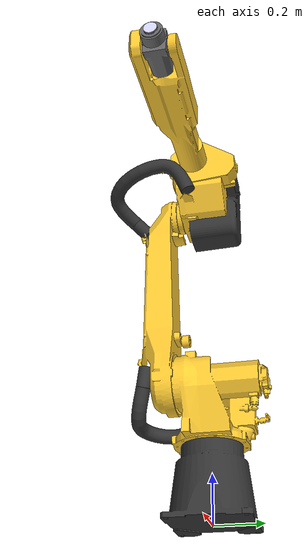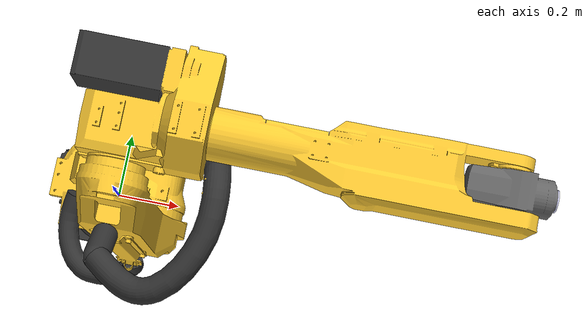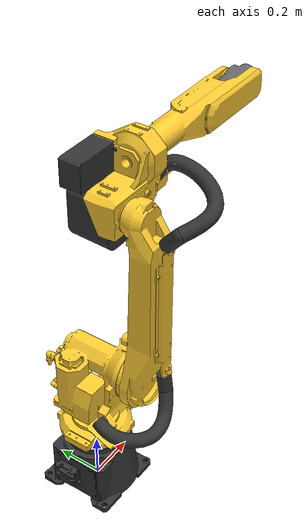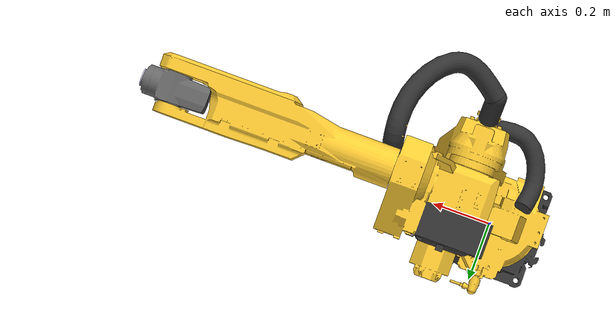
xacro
<?xml version="1.0"?>
<robot name="fanuc_m20ia_35m" xmlns:xacro="http://www.ros.org/wiki/xacro">
  <xacro:arg name="tf_prefix" default="fanuc_m20ia_35m/"/>
  <link name="$(arg tf_prefix)link0">
    <visual>
      <origin rpy="0 0 0" xyz="0 0 0"/>
      <geometry>
        <mesh filename="package://acg_resources_fanuc_m20ia_35m_description/meshes/visual/link0.dae"/>
      </geometry>
    </visual>
    <collision>
      <origin rpy="0 0 0" xyz="0 0 0"/>
      <geometry>
        <mesh filename="package://acg_resources_fanuc_m20ia_35m_description/meshes/collision/link0.stl"/>
      </geometry>
    </collision>
  </link>
  <link name="$(arg tf_prefix)link1">
    <visual>
      <origin rpy="0 0 0" xyz="0 0 -0.525"/>
      <geometry>
        <mesh filename="package://acg_resources_fanuc_m20ia_35m_description/meshes/visual/link1.dae"/>
      </geometry>
    </visual>
    <collision>
      <origin rpy="0 0 0" xyz="0 0 -0.525"/>
      <geometry>
        <mesh filename="package://acg_resources_fanuc_m20ia_35m_description/meshes/collision/link1.stl"/>
      </geometry>
    </collision>
  </link>
  <joint name="$(arg tf_prefix)joint1" type="revolute">
    <origin rpy="0 0 0" xyz="0 0 0.525"/>
    <parent link="$(arg tf_prefix)link0"/>
    <child link="$(arg tf_prefix)link1"/>
    <axis xyz="0 0 1"/>
    <limit effort="2500" lower="-3.228859" upper="3.228859" velocity="3.14"/>
  </joint>
  <link name="$(arg tf_prefix)link2">
    <visual>
      <origin rpy="${pi/2} 0 ${pi/2}" xyz="-0.525 -0.15 0"/>
      <geometry>
        <mesh filename="package://acg_resources_fanuc_m20ia_35m_description/meshes/visual/link2.dae"/>
      </geometry>
    </visual>
    <collision>
      <origin rpy="${pi/2} 0 ${pi/2}" xyz="-0.525 -0.15 0"/>
      <geometry>
        <mesh filename="package://acg_resources_fanuc_m20ia_35m_description/meshes/collision/link2.stl"/>
      </geometry>
    </collision>
  </link>
  <joint name="$(arg tf_prefix)joint2" type="revolute">
    <origin rpy="${-pi/2} ${-pi/2} 0" xyz="0.150 0 0"/>
    <parent link="$(arg tf_prefix)link1"/>
    <child link="$(arg tf_prefix)link2"/>
    <axis xyz="0 0 1"/>
    <limit effort="2500" lower="-1.745329" upper="2.792527" velocity="3.14"/>
  </joint>
  <link name="$(arg tf_prefix)link3">
    <visual>
      <origin rpy="${pi/2} 0 ${pi/2}" xyz="-1.315 -0.15 0"/>
      <geometry>
        <mesh filename="package://acg_resources_fanuc_m20ia_35m_description/meshes/visual/link3.dae"/>
      </geometry>
    </visual>
    <collision>
      <origin rpy="${pi/2} 0 ${pi/2}" xyz="-1.315 -0.15 0"/>
      <geometry>
        <mesh filename="package://acg_resources_fanuc_m20ia_35m_description/meshes/collision/link3.stl"/>
      </geometry>
    </collision>
  </link>
  <joint name="$(arg tf_prefix)joint3" type="revolute">
    <origin rpy="0 0 0" xyz="0.79 0 0"/>
    <parent link="$(arg tf_prefix)link2"/>
    <child link="$(arg tf_prefix)link3"/>
    <axis xyz="0 0 1"/>
    <limit effort="2000" lower="-3.228859" upper="4.766494" velocity="3.49"/>
  </joint>
  <link name="$(arg tf_prefix)link4">
    <visual>
      <origin rpy="${-pi} ${-pi/2} 0" xyz="-1.465 0 -1.01"/>
      <geometry>
        <mesh filename="package://acg_resources_fanuc_m20ia_35m_description/meshes/visual/link4.dae"/>
      </geometry>
    </visual>
    <collision>
      <origin rpy="${-pi} ${-pi/2} 0" xyz="-1.465 0 -1.01"/>
      <geometry>
        <mesh filename="package://acg_resources_fanuc_m20ia_35m_description/meshes/collision/link4.stl"/>
      </geometry>
    </collision>
  </link>
  <joint name="$(arg tf_prefix)joint4" type="revolute">
    <origin rpy="-1.5708 0 0" xyz="0.15 0.86 0"/>
    <parent link="$(arg tf_prefix)link3"/>
    <child link="$(arg tf_prefix)link4"/>
    <axis xyz="0 0 1"/>
    <limit effort="110" lower="-3.490659" upper="3.490659" velocity="6.11"/>
  </joint>
  <link name="$(arg tf_prefix)link5">
    <visual>
      <origin rpy="${pi/2} 0 ${pi/2}" xyz="-1.465 -1.01 0"/>
      <geometry>
        <mesh filename="package://acg_resources_fanuc_m20ia_35m_description/meshes/visual/link5.dae"/>
      </geometry>
    </visual>
    <collision>
      <origin rpy="${pi/2} 0 ${pi/2}" xyz="-1.465 -1.01 0"/>
      <geometry>
        <mesh filename="package://acg_resources_fanuc_m20ia_35m_description/meshes/collision/link5.stl"/>
      </geometry>
    </collision>
  </link>
  <joint name="$(arg tf_prefix)joint5" type="revolute">
    <origin rpy="${pi/2} 0 0" xyz=" 0 0 0"/>
    <parent link="$(arg tf_prefix)link4"/>
    <child link="$(arg tf_prefix)link5"/>
    <axis xyz="0 0 1"/>
    <limit effort="110" lower="-2.443461" upper="2.443461" velocity="6.11"/>
  </joint>
  <link name="$(arg tf_prefix)link6">
    <visual>
      <origin rpy="0 0 0" xyz="0 0 0"/>
      <geometry>
        <mesh filename="package://acg_resources_fanuc_m20ia_35m_description/meshes/visual/link6.dae"/>
      </geometry>
    </visual>
    <collision>
      <origin rpy="0 0 0" xyz="0 0 0"/>
      <geometry>
        <mesh filename="package://acg_resources_fanuc_m20ia_35m_description/meshes/collision/link6.stl"/>
      </geometry>
    </collision>
  </link>
  <joint name="$(arg tf_prefix)joint6" type="revolute">
    <origin rpy="${-pi/2} 0 0" xyz="0 0.1 0"/>
    <parent link="$(arg tf_prefix)link5"/>
    <child link="$(arg tf_prefix)link6"/>
    <axis xyz="0 0 1"/>
    <limit effort="60" lower="-7.853982" upper="7.853982" velocity="6.98"/>
  </joint>
</robot>
